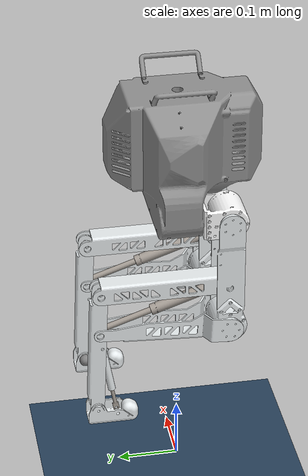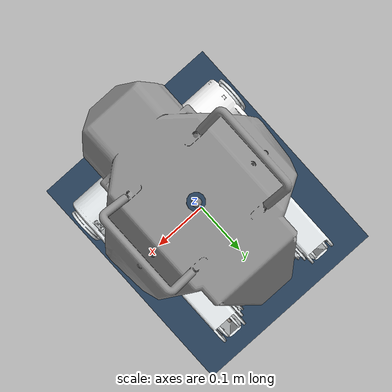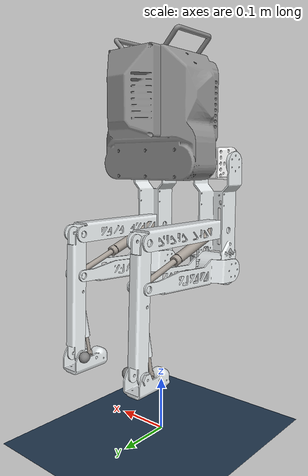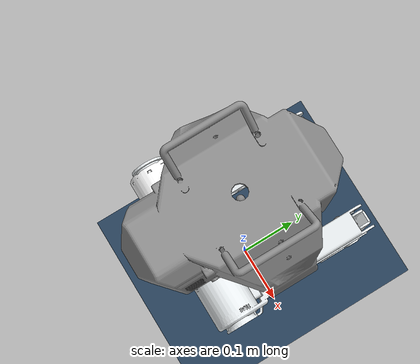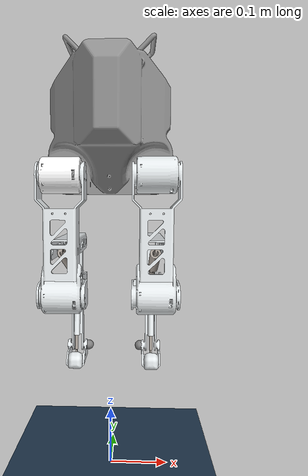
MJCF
<mujoco model="my_bipedal flat scene">
  <include file="mujocoBipedalenv.xml"/>

  <statistic center="0 0 1.0" extent=".5"/>

  <visual>
    <headlight diffuse="0.6 0.6 0.6" ambient="0.1 0.1 0.1" specular="0.9 0.9 0.9"/>
    <rgba haze="0.15 0.25 0.35 1"/>
    <global azimuth="140" elevation="-20"/>
  </visual>

  <asset>
    <texture type="skybox" builtin="gradient" rgb1="0.3 0.5 0.7" rgb2="0 0 0" width="512" height="3072"/>
    <texture type="2d" name="groundplane" builtin="checker" mark="edge" rgb1="0.2 0.3 0.4" rgb2="0.1 0.2 0.3"
      markrgb="0.8 0.8 0.8" width="300" height="300"/>
    <material name="groundplane" texture="groundplane" texuniform="true" texrepeat="5 5" reflectance="0.2"/>
  </asset>

  <worldbody>
    <geom name="floor" size="0 0 0.05" type="plane" material="groundplane"/>
  </worldbody>

  <sensor>
    <contact name="left_foot_contact" geom1="floor" geom2="LFootLink" data="found" reduce="mindist"/>
    <contact name="right_foot_contact" geom1="floor" geom2="RFootLink" data="found" reduce="mindist"/>
    <contact name="left_foot_force" geom1="floor" geom2="LFootLink" data="force" reduce="netforce"/>
    <contact name="right_foot_force" geom1="floor" geom2="RFootLink" data="force" reduce="netforce"/>
  </sensor>

  <keyframe>
    <key name="stand"
      qpos="
      0 0 0.7
      1 0 0 0
      -0.1 0.2 0.3 0 0 0 0 0 0 0
      -0.1 0.2 0.3 0 0 0 0 0 0 0
      "
      ctrl="
      -0.1 0.2 0.3
      -0.1 0.2 0.3
      "/>
  </keyframe>

</mujoco>

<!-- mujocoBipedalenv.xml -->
<mujoco model="URDFV2_cylinder_collision">
  <compiler angle="radian" meshdir="assets"/>

  <asset>
    <mesh name="BaseLink" file="BaseLink.STL"/>
    <mesh name="LFootLink" file="LFootLink.STL"/>
    <mesh name="LHipLink" file="LHipLink.STL"/>
    <mesh name="LLowerLink1" file="LLowerLink1.STL"/>
    <mesh name="LLowerLink2" file="LLowerLink2.STL"/>
    <mesh name="LShankLink" file="LShankLink.STL"/>
    <mesh name="LShankSpringLink" file="LShankSpringLink.STL"/>
    <mesh name="LShankSpringLinkL" file="LShankSpringLinkL.STL"/>
    <mesh name="LSpringLink" file="LSpringLink.STL"/>
    <mesh name="LSpringLinkL" file="LSpringLinkL.STL"/>
    <mesh name="LUpperLink" file="LUpperLink.STL"/>
    <mesh name="RFootLink" file="RFootLink.STL"/>
    <mesh name="RHipLink" file="RHipLink.STL"/>
    <mesh name="RLowerLink1" file="RLowerLink1.STL"/>
    <mesh name="RLowerLink2" file="RLowerLink2.STL"/>
    <mesh name="RShankLink" file="RShankLink.STL"/>
    <mesh name="RShankSpringLink" file="RShankSpringLink.STL"/>
    <mesh name="RShankSpringLinkL" file="RShankSpringLinkL.STL"/>
    <mesh name="RSpringLink" file="RSpringLink.STL"/>
    <mesh name="RSpringLinkL" file="RSpringLinkL.STL"/>
    <mesh name="RUpperLink" file="RUpperLink.STL"/>
  </asset>

  <worldbody>
    <light directional="true" diffuse=".8 .8 .8" specular=".2 .2 .2" pos="0 0 5" dir="0 0 -1"/>
    <light directional="false" diffuse=".5 .5 .5" specular="0 0 0" pos="0 0 2" dir="0 0 -1" mode="trackcom"/>

    <body name="BaseLink" pos="0 0 0.7">
      <inertial pos="0.000028 0.00303 -0.13936" mass="1.756" diaginertia="0.0120985 0.0166907 0.0106056"/>
      <!-- visual -->
      <geom pos="0 0 0" contype="0" conaffinity="0" group="1" density="0" rgba="0.5569 0.5569 0.5569 1" type="mesh" mesh="BaseLink"/>
      <!-- collision: box -->
      <geom pos="0 0 -0.1" contype="1" conaffinity="1" group="3" density="0" rgba="0.3 0.3 0.3 0.3" type="box" size="0.1 0.11 0.1"/>
      <freejoint name="floating_base_joint"/>
      <site name="imu" pos="0 0 -0.05"/>

      <!-- ====== LEFT LEG ====== -->
      <body name="LHipLink" pos="0.075 -0.029215 -0.189354" quat="0 0 -0.7071068 0.7071068">
        <inertial pos="0.001718 -0.000048 0.03364" mass="0.457" diaginertia="0.000251 0.0002795 0.0002244"/>
        <joint name="LHipJoint" pos="0 0 0" type="hinge" axis="0 0 -1" range="-0.7854 0.7854" actuatorfrcrange="-27 27" armature="0.01"/>
        <geom pos="0 0 0" contype="0" conaffinity="0" group="1" density="0" rgba="0.898 0.9176 0.9255 1" type="mesh" mesh="LHipLink"/>
        <geom pos="0.0017 0 0.0336" contype="1" conaffinity="1" group="3" density="0" rgba="0.3 0.3 0.3 0.3" type="cylinder" size="0.03 0.05"/>

        <body name="LUpperLink" pos="-0.031125 0 0.038" quat="0.4999982 0.5 0.5000018 0.5">
          <inertial pos="0.15453 0.001338 0.032893" mass="0.588" diaginertia="0.0003673 0.0026925 0.0025714"/>
          <joint name="LUpperJoint" pos="0 0 0" type="hinge" axis="0 0 -1" range="-0.7854 1.0472" actuatorfrcrange="-27 27" armature="0.01"/>
          <geom pos="0 0 0" contype="0" conaffinity="0" group="1" density="0" rgba="0.898 0.9176 0.9255 1" type="mesh" mesh="LUpperLink"/>
          <geom pos="0.1545 0.0013 0.0329" euler="0 1.5708 0" contype="1" conaffinity="1" group="3" density="0" rgba="0.3 0.3 0.3 0.3" type="cylinder" size="0.035 0.11"/>

          <body name="LLowerLink1" pos="0.19222 0 -0.0067634" quat="-0.0000037 0 0 1">
            <inertial pos="-0.003811 0.074686 0.03886" mass="0.168" diaginertia="0.0007929 0.0001215 0.0007175"/>
            <joint name="LLowerJoint1" pos="0 0 0" type="hinge" axis="0 0 -1" range="-3.14159 3.14159" actuatorfrcrange="-27 27" armature="0.01"/>
            <geom pos="0 0 0" contype="0" conaffinity="0" group="1" density="0" rgba="0.898 0.9176 0.9255 1" type="mesh" mesh="LLowerLink1"/>
            <geom pos="-0.0038 0.0747 0.0389" euler="1.5708 0 0" contype="1" conaffinity="1" group="3" density="0" rgba="0.3 0.3 0.3 0.3" type="cylinder" size="0.02 0.095"/>

            <body name="LShankLink" pos="0.0000544 0.20893 0.026963" quat="0 -0.0000037 1 -0.0000037">
              <inertial pos="0.036204 0.005206 -0.011037" mass="0.118" diaginertia="0.0000182 0.0004906 0.0004904"/>
              <joint name="LShankJoint" pos="0 0 0" type="hinge" axis="0 0 -1" range="-3.14159 3.14159" actuatorfrcrange="-27 27"/>
              <geom pos="0 0 0" contype="0" conaffinity="0" group="1" density="0" rgba="0.898 0.9176 0.9255 1" type="mesh" mesh="LShankLink"/>
              <geom pos="0.0362 0.0052 -0.011" euler="0 1.5708 0" contype="1" conaffinity="1" group="3" density="0" rgba="0.3 0.3 0.3 0.3" type="cylinder" size="0.018 0.108"/>

              <body name="LFootLink" pos="0.14463 0.0058657 0.007" quat="0 -0.0000037 1 -0.0000037">
                <inertial pos="-0.01521 -0.021335 0.019469" mass="0.088" diaginertia="0.0000647 0.0000257 0.0000616"/>
                <joint name="LFootJoint" pos="0 0 0" type="hinge" axis="0 0 -1" range="-1.0472 1.0472" actuatorfrcrange="-27 27"/>
                <!-- visual + collision: keep mesh -->
                <geom name="LFootLink" pos="0 0 0" contype="1" conaffinity="1" group="1" density="0" rgba="0.898 0.9176 0.9255 1" type="mesh" mesh="LFootLink"/>
                <site name="left_foot" pos="0 0 0.04" size="0.01"/>
              </body>

              <body name="LShankSpringLink" pos="0.030199 -0.0042978 -0.0092865" quat="0.7043833 0.0619865 0.7043859 -0.0619867">
                <inertial pos="0.00175 0 0.042154" mass="0.022" diaginertia="0.0000155 0.0000155 0.0000004"/>
                <joint name="LShankSpringJoint" pos="0 0 0" type="hinge" axis="-1 0 0" range="-3.14159 3.14159" actuatorfrcrange="-27 27"/>
                <geom pos="0 0 0" contype="0" conaffinity="0" group="1" density="0" rgba="0.898 0.9176 0.9255 1" type="mesh" mesh="LShankSpringLink"/>

                <body name="LShankSpringLinkL">
                  <inertial pos="0.00175 0 0.093678" mass="0.017" diaginertia="0.0000077 0.0000077 0.0000001"/>
                  <joint name="LShankSpringJointL" pos="0 0 0" type="slide" axis="0 0 1" range="-0.2 0.2" stiffness="200" damping="5" springref="0" actuatorfrcrange="-50 50"/>
                  <geom pos="0 0 0" contype="0" conaffinity="0" group="1" density="0" rgba="0.6471 0.6196 0.5882 1" type="mesh" mesh="LShankSpringLinkL"/>
                </body>
              </body>
            </body>
          </body>

          <body name="LLowerLink2" pos="0.12 0 0.0052366" quat="0 1 0 0">
            <inertial pos="-0.006875 0.1029 -0.026" mass="0.138" diaginertia="0.0005849 0.0000433 0.000572"/>
            <joint name="LLowerJoint2" pos="0 0 0" type="hinge" axis="0 0 -1" range="-3.14159 3.14159" actuatorfrcrange="-27 27"/>
            <geom pos="0 0 0" contype="0" conaffinity="0" group="1" density="0" rgba="0.898 0.9176 0.9255 1" type="mesh" mesh="LLowerLink2"/>
            <geom pos="-0.0069 0.1029 -0.026" euler="1.5708 0 0" contype="1" conaffinity="1" group="3" density="0" rgba="0.3 0.3 0.3 0.3" type="cylinder" size="0.02 0.11"/>
          </body>

          <body name="LSpringLink" pos="0.12 0 0.0052366" quat="0 1 0 0">
            <inertial pos="0.02333 0.067547 -0.026" mass="0.174" diaginertia="0.0002101 0.0000328 0.0002342"/>
            <joint name="LSpringJoint" pos="0 0 0" type="hinge" axis="0 0 -1" range="-3.14159 3.14159" actuatorfrcrange="-27 27"/>
            <geom pos="0 0 0" contype="0" conaffinity="0" group="1" density="0" rgba="0.6471 0.6157 0.5843 1" type="mesh" mesh="LSpringLink"/>

            <body name="LSpringLinkL">
              <inertial pos="0.049906 0.144491 -0.026" mass="0.077" diaginertia="0.0000925 0.0000119 0.0001034"/>
              <joint name="LSpringJointL" pos="0 0 0" type="slide" axis="-0.32646 -0.94521 0" range="-0.2 0.2" stiffness="500" damping="5" springref="-0.04" actuatorfrcrange="-50 50"/>
              <geom pos="0 0 0" contype="0" conaffinity="0" group="1" density="0" rgba="0.6471 0.6157 0.5843 1" type="mesh" mesh="LSpringLinkL"/>
            </body>
          </body>
        </body>
      </body>

      <!-- ====== RIGHT LEG (mirror) ====== -->
      <body name="RHipLink" pos="-0.075 -0.029215 -0.189354" quat="0 0 0.7071068 -0.7071068">
        <inertial pos="0.001718 0.000066 0.033566" mass="0.457" diaginertia="0.0002507 0.0002786 0.000225"/>
        <joint name="RHipJoint" pos="0 0 0" type="hinge" axis="0 0 -1" range="-0.7854 0.7854" actuatorfrcrange="-27 27" armature="0.01"/>
        <geom pos="0 0 0" contype="0" conaffinity="0" group="1" density="0" rgba="1 1 1 1" type="mesh" mesh="RHipLink"/>
        <geom pos="0.0017 0.0001 0.0336" contype="1" conaffinity="1" group="3" density="0" rgba="0.3 0.3 0.3 0.3" type="cylinder" size="0.03 0.05"/>

        <body name="RUpperLink" pos="0.031125 0 0.038" quat="0.5 -0.5 -0.5 0.5">
          <inertial pos="0.154527 -0.001328 0.029357" mass="0.588" diaginertia="0.0003674 0.0026923 0.0025713"/>
          <joint name="RUpperJoint" pos="0 0 0" type="hinge" axis="0 0 -1" range="-0.7854 1.0472" actuatorfrcrange="-27 27" armature="0.01"/>
          <geom pos="0 0 0" contype="0" conaffinity="0" group="1" density="0" rgba="0.898 0.9176 0.9255 1" type="mesh" mesh="RUpperLink"/>
          <geom pos="0.1545 -0.0013 0.0294" euler="0 1.5708 0" contype="1" conaffinity="1" group="3" density="0" rgba="0.3 0.3 0.3 0.3" type="cylinder" size="0.035 0.11"/>

          <body name="RLowerLink1" pos="0.1922151 0 -0.0073642" quat="0 0 1 0">
            <inertial pos="-0.003811 0.074686 -0.037517" mass="0.168" diaginertia="0.0007929 0.0001215 0.0007175"/>
            <joint name="RLowerJoint1" pos="0 0 0" type="hinge" axis="0 0 -1" range="-3.14159 3.14159" actuatorfrcrange="-27 27" armature="0.01"/>
            <geom pos="0 0 0" contype="0" conaffinity="0" group="1" density="0" rgba="0.898 0.9176 0.9255 1" type="mesh" mesh="RLowerLink1"/>
            <geom pos="-0.0038 0.0747 -0.0375" euler="1.5708 0 0" contype="1" conaffinity="1" group="3" density="0" rgba="0.3 0.3 0.3 0.3" type="cylinder" size="0.02 0.095"/>

            <body name="RShankLink" pos="0.0000544 0.2089259 -0.0271523" quat="0 0 1 0">
              <inertial pos="0.036204 0.005206 0.011037" mass="0.118" diaginertia="0.0000182 0.0004906 0.0004904"/>
              <joint name="RShankJoint" pos="0 0 0" type="hinge" axis="0 0 -1" range="-3.14159 3.14159" actuatorfrcrange="-27 27"/>
              <geom pos="0 0 0" contype="0" conaffinity="0" group="1" density="0" rgba="0.898 0.9176 0.9255 1" type="mesh" mesh="RShankLink"/>
              <geom pos="0.0362 0.0052 0.011" euler="0 1.5708 0" contype="1" conaffinity="1" group="3" density="0" rgba="0.3 0.3 0.3 0.3" type="cylinder" size="0.018 0.108"/>

              <body name="RFootLink" pos="0.1446251 0.0058647 -0.007" quat="0 0 1 0">
                <inertial pos="-0.01521 -0.021335 -0.016604" mass="0.088" diaginertia="0.0000647 0.0000257 0.0000616"/>
                <joint name="RFootJoint" pos="0 0 0" type="hinge" axis="0 0 -1" range="-1.0472 1.0472" actuatorfrcrange="-27 27"/>
                <!-- visual + collision: keep mesh -->
                <geom name="RFootLink" pos="0 0 0" contype="1" conaffinity="1" group="1" density="0" rgba="0.898 0.9176 0.9255 1" type="mesh" mesh="RFootLink"/>
                <site name="right_foot" pos="0 0 -0.04" size="0.01"/>
              </body>

              <body name="RShankSpringLink" pos="0.030199 -0.004298 0.0092865" quat="0.704383 0.06199 0.7043856 -0.0619903">
                <inertial pos="-0.00175 0 0.042154" mass="0.022" diaginertia="0.0000155 0.0000155 0.0000004"/>
                <joint name="RShankSpringJoint" pos="0 0 0" type="hinge" axis="-1 0 0" range="-3.14159 3.14159" actuatorfrcrange="-27 27"/>
                <geom pos="0 0 0" contype="0" conaffinity="0" group="1" density="0" rgba="0.898 0.9176 0.9255 1" type="mesh" mesh="RShankSpringLink"/>

                <body name="RShankSpringLinkL">
                  <inertial pos="-0.00175 0 0.093678" mass="0.017" diaginertia="0.0000077 0.0000077 0.0000001"/>
                  <joint name="RShankSpringJointL" pos="0 0 0" type="slide" axis="0 0 1" range="-0.2 0.2" stiffness="200" damping="5" springref="0" actuatorfrcrange="-50 50"/>
                  <geom pos="0 0 0" contype="0" conaffinity="0" group="1" density="0" rgba="0.6471 0.6157 0.5843 1" type="mesh" mesh="RShankSpringLinkL"/>
                </body>
              </body>
            </body>
          </body>

          <body name="RLowerLink2" pos="0.12 0 0.012788" quat="0 -0.0000037 -1 0.0000037">
            <inertial pos="0.006875 0.1031 -0.018037" mass="0.138" diaginertia="0.0005849 0.0000433 0.000572"/>
            <joint name="RLowerJoint2" pos="0 0 0" type="hinge" axis="0 0 -1" range="-3.14159 3.14159" actuatorfrcrange="-27 27"/>
            <geom pos="0 0 0" contype="0" conaffinity="0" group="1" density="0" rgba="0.898 0.9176 0.9255 1" type="mesh" mesh="RLowerLink2"/>
            <geom pos="0.0069 0.1031 -0.018" euler="1.5708 0 0" contype="1" conaffinity="1" group="3" density="0" rgba="0.3 0.3 0.3 0.3" type="cylinder" size="0.02 0.11"/>
          </body>

          <body name="RSpringLink" pos="0.12 0 0.0127881" quat="0 0 -1 0">
            <inertial pos="-0.02333 0.067547 -0.018225" mass="0.174" diaginertia="0.0002101 0.0000328 0.0002342"/>
            <joint name="RSpringJoint" pos="0 0 0" type="hinge" axis="0 0 -1" range="-3.14159 3.14159" actuatorfrcrange="-27 27"/>
            <geom pos="0 0 0" contype="0" conaffinity="0" group="1" density="0" rgba="0.6471 0.6157 0.5843 1" type="mesh" mesh="RSpringLink"/>

            <body name="RSpringLinkL">
              <inertial pos="-0.049906 0.144491 -0.018225" mass="0.077" diaginertia="0.0000925 0.0000119 0.0001034"/>
              <joint name="RSpringJointL" pos="0 0 0" type="slide" axis="0.32646 -0.94521 0" range="-0.2 0.2" stiffness="500" damping="5" springref="-0.04" actuatorfrcrange="-50 50"/>
              <geom pos="0 0 0" contype="0" conaffinity="0" group="1" density="0" rgba="0.6471 0.6157 0.5843 1" type="mesh" mesh="RSpringLinkL"/>
            </body>
          </body>
        </body>
      </body>
    </body>
  </worldbody>

  <equality>
    <connect name="L_Lower_Loop" body1="LLowerLink2" body2="LShankLink" anchor="0 0.206 -0.00796" solref="0.005 1"/>
    <connect name="L_Spring_Loop" body1="LSpringLinkL" body2="LShankLink" anchor="0.07216 0.20893 0" solref="0.005 1"/>
    <connect name="L_Foot_Spring_Loop" body1="LShankSpringLinkL" body2="LFootLink" anchor="0 0 0.12742" solref="0.005 1"/>

    <connect name="R_Lower_Loop" body1="RLowerLink2" body2="RShankLink" anchor="0 0.206 0" solref="0.005 1"/>
    <connect name="R_Spring_Loop" body1="RSpringLinkL" body2="RShankLink" anchor="-0.07216 0.20893 0" solref="0.005 1"/>
    <connect name="R_Foot_Spring_Loop" body1="RShankSpringLinkL" body2="RFootLink" anchor="0 0 0.12742" solref="0.005 1"/>
  </equality>

  <contact>
    <!-- ===== Left Leg: serial chain ===== -->
    <exclude body1="BaseLink"   body2="LHipLink"/>
    <exclude body1="BaseLink"   body2="LUpperLink"/>
    <exclude body1="LHipLink"   body2="LUpperLink"/>
    <exclude body1="LUpperLink" body2="LLowerLink1"/>
    <exclude body1="LLowerLink1" body2="LShankLink"/>
    <exclude body1="LShankLink" body2="LFootLink"/>
    <exclude body1="LShankLink" body2="LShankSpringLink"/>
    <exclude body1="LShankSpringLink" body2="LShankSpringLinkL"/>
    <exclude body1="LUpperLink" body2="LLowerLink2"/>
    <exclude body1="LUpperLink" body2="LSpringLink"/>
    <exclude body1="LSpringLink" body2="LSpringLinkL"/>
    <!-- ===== Left Leg: parallel loops ===== -->
    <exclude body1="LLowerLink2" body2="LShankLink"/>
    <exclude body1="LSpringLinkL" body2="LShankLink"/>
    <exclude body1="LShankSpringLinkL" body2="LFootLink"/>
    <exclude body1="LSpringLink" body2="LLowerLink2"/>
    <exclude body1="LLowerLink1" body2="LSpringLinkL"/>
    <exclude body1="LLowerLink1" body2="LSpringLink"/>
    <exclude body1="LShankLink" body2="LShankSpringLinkL"/>
    <!-- ===== Right Leg: serial chain ===== -->
    <exclude body1="BaseLink"   body2="RHipLink"/>
    <exclude body1="BaseLink"   body2="RUpperLink"/>
    <exclude body1="RHipLink"   body2="RUpperLink"/>
    <exclude body1="RUpperLink" body2="RLowerLink1"/>
    <exclude body1="RLowerLink1" body2="RShankLink"/>
    <exclude body1="RShankLink" body2="RFootLink"/>
    <exclude body1="RShankLink" body2="RShankSpringLink"/>
    <exclude body1="RShankSpringLink" body2="RShankSpringLinkL"/>
    <exclude body1="RUpperLink" body2="RLowerLink2"/>
    <exclude body1="RUpperLink" body2="RSpringLink"/>
    <exclude body1="RSpringLink" body2="RSpringLinkL"/>
    <!-- ===== Right Leg: parallel loops ===== -->
    <exclude body1="RLowerLink2" body2="RShankLink"/>
    <exclude body1="RSpringLinkL" body2="RShankLink"/>
    <exclude body1="RShankSpringLinkL" body2="RFootLink"/>
    <exclude body1="RSpringLink" body2="RLowerLink2"/>
    <exclude body1="RLowerLink1" body2="RSpringLinkL"/>
    <exclude body1="RLowerLink1" body2="RSpringLink"/>
    <exclude body1="RShankLink" body2="RShankSpringLinkL"/>
  </contact>

  <sensor>
    <gyro name="imu_ang_vel" site="imu"/>
    <velocimeter name="imu_lin_vel" site="imu"/>
    <accelerometer name="imu_lin_acc" site="imu"/>
    <subtreeangmom name="root_angmom" body="BaseLink"/>
    <framezaxis name="upvector" objtype="site" objname="imu"/>
    <framepos name="left_foot_pos" objtype="site" objname="left_foot"/>
    <framepos name="right_foot_pos" objtype="site" objname="right_foot"/>
  </sensor>

  <actuator>
    <position kp="20.0" kv="1.0" forcerange="-27 27" ctrllimited="false" inheritrange="0" name="LHipJoint" joint="LHipJoint"/>
    <position kp="20.0" kv="1.0" forcerange="-27 27" ctrllimited="false" inheritrange="0" name="LUpperJoint" joint="LUpperJoint"/>
    <position kp="20.0" kv="1.0" forcerange="-27 27" ctrllimited="false" inheritrange="0" name="LLowerJoint1" joint="LLowerJoint1"/>
    <position kp="20.0" kv="1.0" forcerange="-27 27" ctrllimited="false" inheritrange="0" name="RHipJoint" joint="RHipJoint"/>
    <position kp="20.0" kv="1.0" forcerange="-27 27" ctrllimited="false" inheritrange="0" name="RUpperJoint" joint="RUpperJoint"/>
    <position kp="20.0" kv="1.0" forcerange="-27 27" ctrllimited="false" inheritrange="0" name="RLowerJoint1" joint="RLowerJoint1"/>
  </actuator>
</mujoco>
